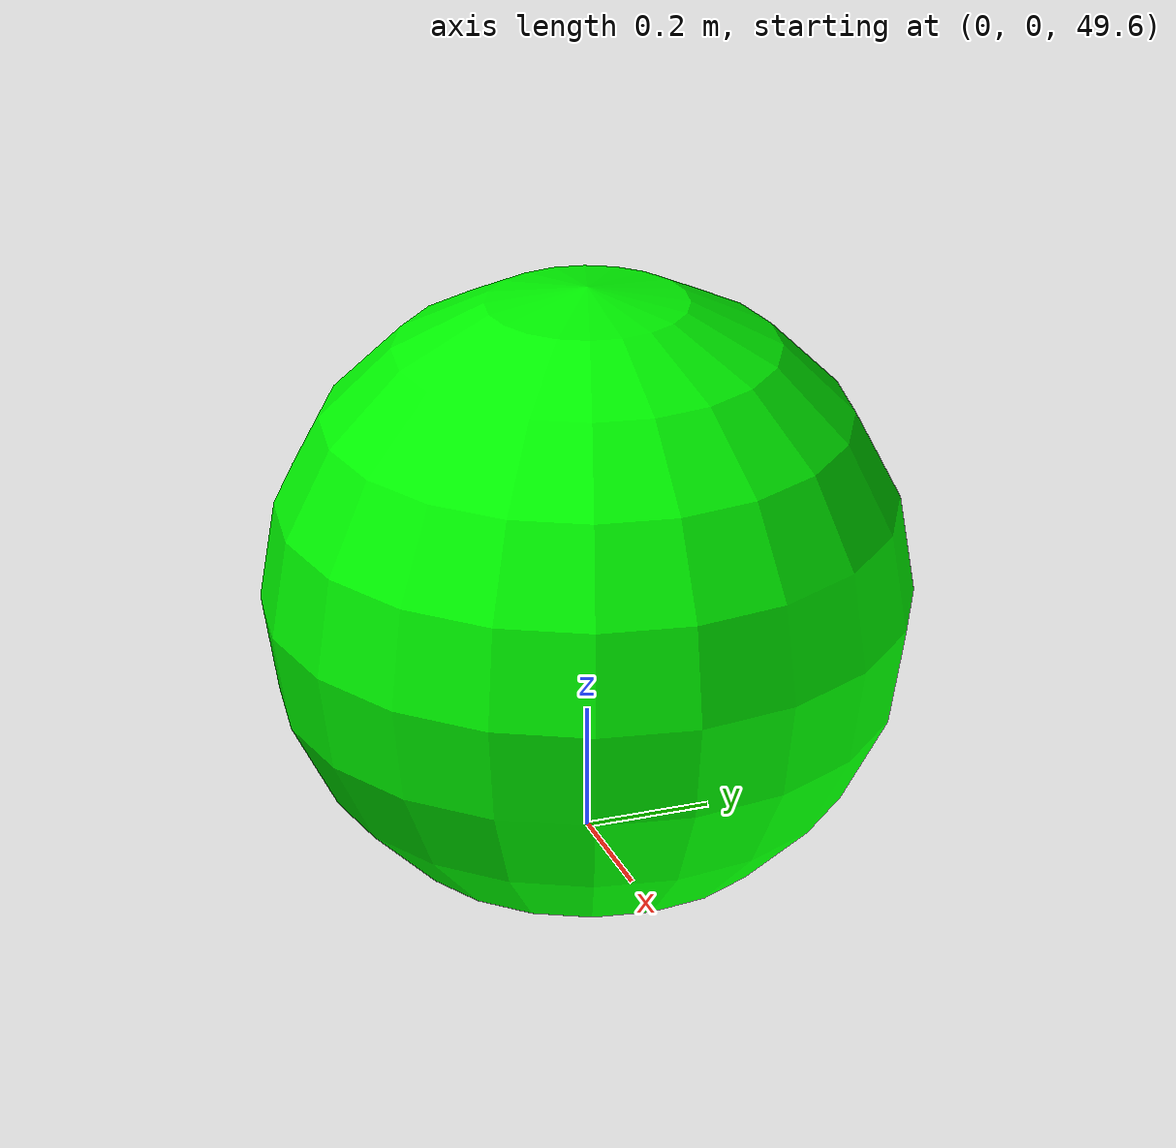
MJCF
<mujoco>
  <option gravity="0 0 -9.81" />
  <worldbody>
    <body name="object_1" pos="0 0 50">
      <geom type="sphere" size="0.5" density="2" rgba="0 1 0 1" />
      <joint name="object_1_joint" type="free" />
    </body>
    <body name="object_2" pos="0 0 -10">
      <geom type="plane" size="30 30 0.1" rgba="0.7 0.7 0.7 1" friction="0.5 0.5 0.5" />
    </body>
  </worldbody>
</mujoco>
